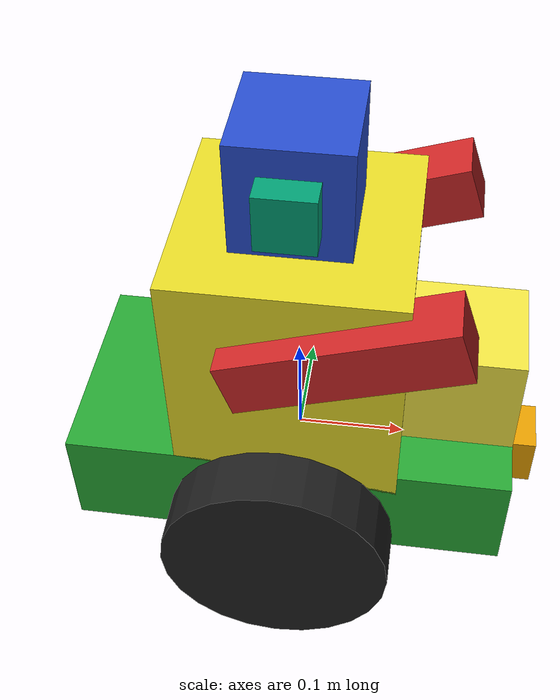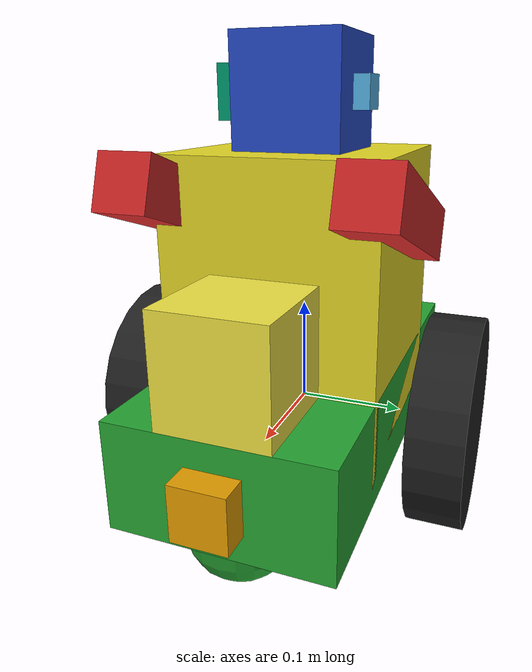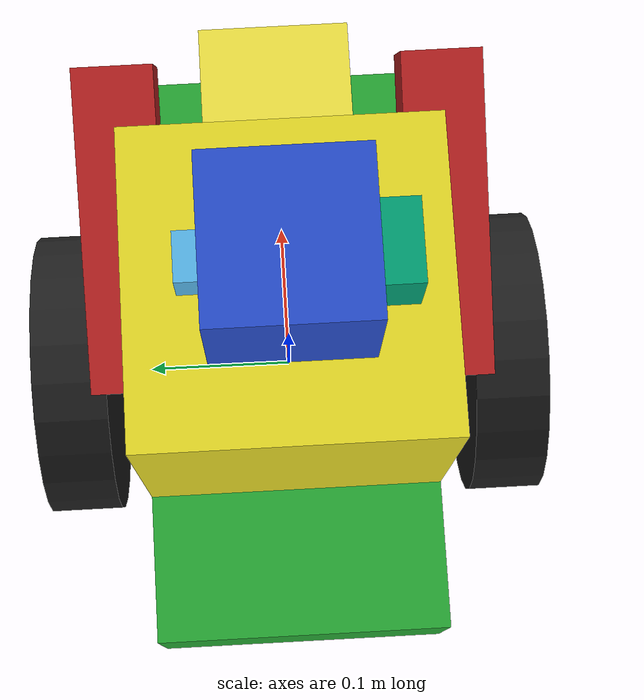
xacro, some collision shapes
<?xml version='1.0'?>

<robot name="my_robot" xmlns:xacro="http://www.ros.org/wiki/xacro">

    <xacro:include filename="$(find my_robot)/urdf/my_robot.gazebo" />

    <link name="robot_footprint"></link>

    <joint name="robot_footprint_joint" type="fixed">
        <origin xyz="0 0 0" rpy="0 0 0" />
        <parent link="robot_footprint"/>
	    <child link="chassis"/>
    </joint>

    <link name="chassis">
        <pose>0 0 0.1 0 0 0</pose>

        <inertial>
            <mass value="15.0"/>
            <origin xyz="0.0 0 0" rpy="0 0 0"/>
            <inertia
                ixx="0.1" ixy="0" ixz="0"
                iyy="0.1" iyz="0"
                izz="0.1"
                />
        </inertial>

        <collision name="collision">
            <origin xyz="0 0 0" rpy="0 0 0"/>
            <geometry>
                <box size=".4 .2 .1"/>
            </geometry>
        </collision>

        <visual name="chassis_visual">
            <origin xyz="0 0 0" rpy="0 0 0 "/>
            <geometry>
                <box size=".4 .2 .1"/>
            </geometry>
        </visual>

        <collision name="back_caster_collision">
            <origin xyz="-0.15 0 -0.05"/>
            <geometry>
                <sphere radius="0.0499"/>
            </geometry>
        </collision>

        <visual name="back_caster_visual">
            <origin xyz="-0.15 0 -0.05"/>
            <geometry>
                <sphere radius="0.05"/>
            </geometry>
        </visual>

        <collision name="front_caster_collision">
            <origin xyz="0.15 0 -0.05" rpy=" 0 0 0 "/>
            <geometry>
                <sphere radius="0.0499"/>
            </geometry>
        </collision>

        <visual name="front_caster_visual">
            <origin xyz="0.15 0 -0.05" rpy="0 0 0"/>
            <geometry>
                <sphere radius="0.05"/>
            </geometry>
        </visual>

    </link>

    <joint name="body_joint" type="fixed">
        <origin xyz="0 0 0.1" rpy="0 0 0" />
        <parent link="chassis"/>
	<child link="body"/>
    </joint>

     <link name="body">

        <inertial>
            <mass value="10.0"/>
            <origin xyz="0.0 0 0" rpy="0 0 0"/>
            <inertia
                ixx="0.1" ixy="0" ixz="0"
                iyy="0.1" iyz="0"
                izz="0.1"
                />
        </inertial>

        <collision>
            <origin xyz="0 0 0" rpy="0 0 0"/>
            <geometry>
                <box size=".2 .2 .3"/>
            </geometry>
        </collision>

        <visual>
            <origin xyz="0 0 0" rpy="0 0 0 "/>
            <geometry>
                <box size=".2 .2 .3"/>
            </geometry>

        </visual>

    </link>

    <joint name="head_joint" type="fixed">
        <origin xyz="0 0 0.2" rpy="0 0 0" />
        <parent link="body"/>
	<child link="head"/>
    </joint>

    <link name="head">

        <inertial>
            <mass value="1.0"/>
            <origin xyz="0.0 0 0" rpy="0 0 0"/>
            <inertia
                ixx="0.1" ixy="0" ixz="0"
                iyy="0.1" iyz="0"
                izz="0.1"
                />
        </inertial>

        <collision>
            <origin xyz="0 0 0" rpy="0 0 0"/>
            <geometry>
                <box size=".1 .1 .1"/>
            </geometry>
        </collision>

        <visual>
            <origin xyz="0 0 0" rpy="0 0 0 "/>
            <geometry>
                <box size=".1 .1 .1"/>
            </geometry>

        </visual>

    </link>

    <joint name="left_arm_joint" type="fixed">
        <origin xyz="0.05 0.1 0.1" rpy="0 1.25 0" />
        <parent link="body"/>
	<child link="left_arm"/>
    </joint>

    <link name="left_arm">

        <inertial>
            <mass value="1.0"/>
            <origin xyz="0.0 0 0" rpy="0 0 0"/>
            <inertia
                ixx="0.1" ixy="0" ixz="0"
                iyy="0.1" iyz="0"
                izz="0.1"
                />
        </inertial>

        <collision>
            <origin xyz="0 0 0" rpy="0 0 0"/>
            <geometry>
                <box size=".05 .05 .2"/>
            </geometry>
        </collision>

        <visual>
            <origin xyz="0 0 0" rpy="0 0 0 "/>
            <geometry>
                <box size=".05 .05 .2"/>
            </geometry>

        </visual>

    </link>

    <joint name="right_arm_joint" type="fixed">
        <origin xyz="0.05 -0.1 0.1" rpy="0 1.25 0" />
        <parent link="body"/>
	<child link="right_arm"/>
    </joint>

    <link name="right_arm">

        <inertial>
            <mass value="1.0"/>
            <origin xyz="0.0 0 0" rpy="0 0 0"/>
            <inertia
                ixx="0.1" ixy="0" ixz="0"
                iyy="0.1" iyz="0"
                izz="0.1"
                />
        </inertial>

        <collision>
            <origin xyz="0 0 0" rpy="0 0 0"/>
            <geometry>
                <box size=".05 .05 .2"/>
            </geometry>
        </collision>

        <visual>
            <origin xyz="0 0 0" rpy="0 0 0 "/>
            <geometry>
                <box size=".05 .05 .2"/>
            </geometry>

        </visual>

    </link>

    <link name="right_wheel">

        <collision>
            <origin xyz="0 0 0" rpy="0 1.5707 1.5707"/>
            <geometry>
                <cylinder radius="0.1" length="0.05"/>
            </geometry>
        </collision>

        <inertial>
            <mass value="5"/>
            <origin xyz="0 0 0" rpy="0 1.5707 1.5707"/>
            <inertia
            ixx="0.1" ixy="0" ixz="0"
            iyy="0.1" iyz="0"
            izz="0.1"
            />
        </inertial>

        <visual>
            <origin xyz="0 0 0" rpy="0 1.5707 1.5707"/>
            <geometry>
                <cylinder radius="0.1" length="0.05"/>
            </geometry>
        </visual>

    </link>

    <link name="left_wheel">

        <collision>
            <origin xyz="0 0 0" rpy="0 1.5707 1.5707"/>
            <geometry>
                <cylinder radius="0.1" length="0.05"/>
            </geometry>
        </collision>

        <inertial>
            <mass value="5"/>
            <origin xyz="0 0 0" rpy="0 1.5707 1.5707"/>
            <inertia
            ixx="0.1" ixy="0" ixz="0"
            iyy="0.1" iyz="0"
            izz="0.1"
            />
        </inertial>

        <visual>
            <origin xyz="0 0 0" rpy="0 1.5707 1.5707"/>
            <geometry>
                <cylinder radius="0.1" length="0.05"/>
            </geometry>
        </visual>

    </link>

        <gazebo reference="left_wheel">
            <material>Gazebo/Black</material>
        </gazebo>

        <gazebo reference="right_wheel">
            <material>Gazebo/Black</material>
        </gazebo>

        <gazebo reference="head">
            <material>Gazebo/Blue</material>
        </gazebo>

        <gazebo reference="body">
            <material>Gazebo/Yellow</material>
        </gazebo>

        <gazebo reference="left_arm">
            <material>Gazebo/Red</material>
        </gazebo>

        <gazebo reference="right_arm">
            <material>Gazebo/Red</material>
        </gazebo>

        <gazebo reference="chassis">
            <material>Gazebo/Green</material>
        </gazebo>

    <joint name="left_wheel_hinge" type="continuous">
        <origin xyz="0 0.15 0" rpy="0 0 0"/>
        <child link="left_wheel"/>
        <parent link="chassis"/>
        <axis xyz="0 1 0" rpy="0 0 0"/>
        <limit effort="10000" velocity="1000"/>
        <dynamics damping="1.0" friction="1.0"/>
    </joint>

    <joint name="right_wheel_hinge" type="continuous">
        <origin xyz="0 -0.15 0" rpy="0 0 0"/>
        <child link="right_wheel"/>
        <parent link="chassis"/>
        <axis xyz="0 1 0" rpy="0 0 0"/>
        <limit effort="10000" velocity="1000"/>
        <dynamics damping="1.0" friction="1.0"/>
    </joint>

    <link name="camera">
        <collision>
            <origin xyz="0 0 0" rpy="0 0 0"/>
            <geometry>
                <box size="0.05 0.05 0.05"/>
            </geometry>
        </collision>

        <inertial>
            <origin xyz="0 0 0" rpy="0 0 0"/>
            <mass value="0.1"/>
            <inertia
                ixx="1e-6" ixy="0" ixz="0"
                iyy="1e-6" iyz="0"
                izz="1e-6"
                />
        </inertial>

        <visual>
            <origin xyz="0 0 0" rpy="0 0 0"/>
            <geometry>
                <box size="0.05 0.05 0.05"/>
            </geometry>
        </visual>

    </link>

    <joint name="camera_joint" type="fixed">
        <origin xyz="0.2 0 0.0" rpy="0 0 0"/>
        <parent link="chassis"/>
        <child link="camera"/>
        <axis xyz="0 1 0"/>
    </joint>

   <link name="left_ear">
        <collision>
            <origin xyz="0 0 0" rpy="0 0 0"/>
            <geometry>
                <box size="0.05 0.05 0.05"/>
            </geometry>
        </collision>

        <inertial>
            <origin xyz="0 0 0" rpy="0 0 0"/>
            <mass value="0.1"/>
            <inertia
                ixx="1e-6" ixy="0" ixz="0"
                iyy="1e-6" iyz="0"
                izz="1e-6"
                />
        </inertial>

        <visual>
            <origin xyz="0 0 0" rpy="0 0 0"/>
            <geometry>
                <box size="0.03 0.03 0.03"/>
            </geometry>
        </visual>

    </link>

    <joint name="left_ear_joint" type="fixed">
        <origin xyz="0.0 0.05 0.0" rpy="0 0 1.57"/>
        <parent link="head"/>
        <child link="left_ear"/>
        <axis xyz="0 1 0"/>
    </joint>

    <link name="right_ear">
        <collision>
            <origin xyz="0 0 0" rpy="0 0 0"/>
            <geometry>
                <box size="0.03 0.03 0.03"/>
            </geometry>
        </collision>

        <inertial>
            <origin xyz="0 0 0" rpy="0 0 0"/>
            <mass value="0.1"/>
            <inertia
                ixx="1e-6" ixy="0" ixz="0"
                iyy="1e-6" iyz="0"
                izz="1e-6"
                />
        </inertial>

        <visual>
            <origin xyz="0 0 0" rpy="0 0 0"/>
            <geometry>
                <box size="0.05 0.05 0.05"/>
            </geometry>
        </visual>

    </link>

    <joint name="right_ear_joint" type="fixed">
        <origin xyz="0.0 -0.05 0.0" rpy="0 0 -1.57"/>
        <parent link="head"/>
        <child link="right_ear"/>
        <axis xyz="0 1 0"/>
    </joint>

    <link name="hokuyo">
        <collision>
            <origin xyz="0 0 0" rpy="0 0 0"/>
            <geometry>
                <box size="0.1 0.1 0.1"/>
            </geometry>
        </collision>

        <inertial>
            <origin xyz="0 0 0" rpy="0 0 0"/>
            <mass value="1e-5"/>
            <inertia
                ixx="1e-6" ixy="0" ixz="0"
                iyy="1e-6" iyz="0"
                izz="1e-6"
                />
        </inertial>

        <visual>
            <origin xyz="0 0 0" rpy="0 0 0"/>
            <geometry>
                <mesh filename="package://my_robot/meshes/hokuyo.dae"/>
            </geometry>
        </visual>

    </link>

    <joint name="hokuyo_joint" type="fixed">
        <origin xyz="0.15 0 0.1" rpy="0 0 0"/>
        <axis xyz="0 1 0"/>
        <parent link="chassis"/>
        <child link="hokuyo"/>
    </joint>

</robot>
